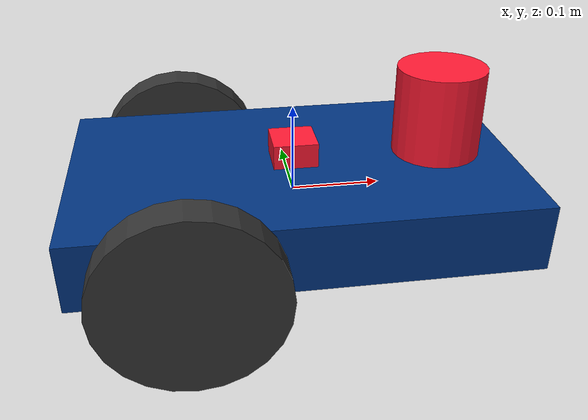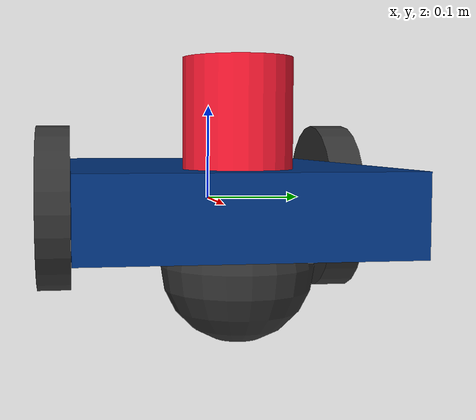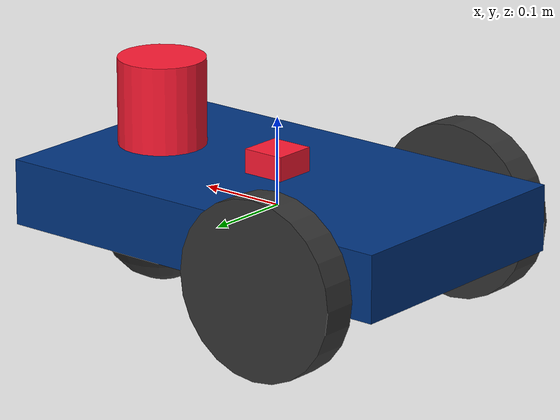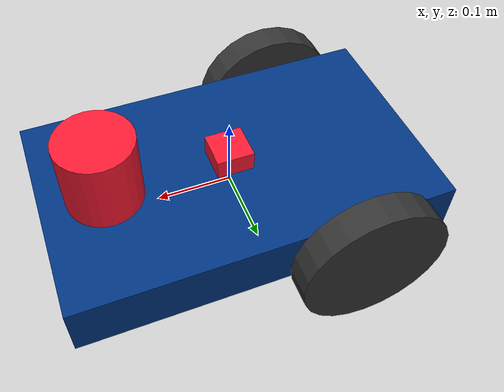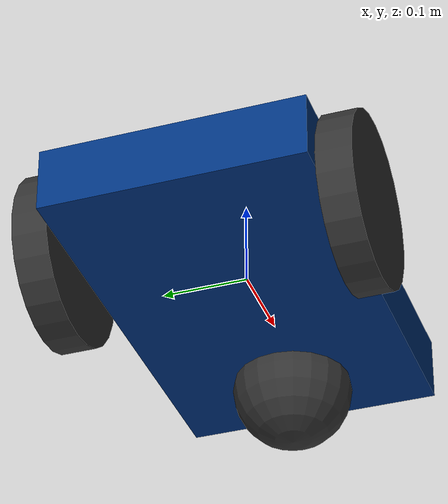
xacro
<?xml version="1.0"?>
<robot name="simple_bot" xmlns:xacro="http://ros.org/wiki/xacro">

    <xacro:include filename="$(find simplebot_description)/urdf/material.xacro"/>
    <xacro:include filename="$(find simplebot_description)/urdf/gazebo.xacro"/>

    <xacro:property name="wheel_radius" value="0.1" />
    <xacro:property name="wheel_width" value="0.04" />
    <xacro:property name="castor_radius" value="0.07" />

    <xacro:property name="box_width" value="0.3" />
    <xacro:property name="box_length" value="0.5" />
    <xacro:property name="box_height" value="0.075" />

    <xacro:property name="z_off" value="0.12" />

    <xacro:property name="lidar_height" value="0.1" />
    <xacro:property name="imu_side" value="0.05" />

    <link name="base_footprint"/>

    <link name="base_link">
        <visual>
            <geometry>
                <box size="${box_length} ${box_width} ${box_height}"/>
            </geometry>
            <material name="blue"/>
        </visual>
        <collision>
            <geometry>
                <box size="${box_length} ${box_width} ${box_height}"/>
            </geometry>
        </collision>
        <inertial>
            <mass value="1.0"/>
            <inertia ixx="0.001" ixy="0.0" ixz="0.0" iyy="0.001" iyz="0.0" izz="0.001"/>
        </inertial>

    </link>

    <joint name="base_joint" type="fixed">
        <origin xyz="0.0 0.0 ${z_off}" rpy="0.0 0.0 0.0"/>
        <parent link="base_link"/>
        <child link="base_footprint"/>
    </joint>

    <xacro:macro name="wheel_def" params="wheel_name direction">
        <link name="${wheel_name}_link">
            <visual>
                <origin xyz="0.0 0.0 0.0" rpy="${pi/2} 0.0 0.0"/>
                <geometry>
                    <cylinder radius="${wheel_radius}" length="${wheel_width}"/>
                </geometry>
                <material name="gray"/>
            </visual>
            <collision>
                <origin xyz="0.0 0.0 0.0" rpy="${pi/2} 0.0 0.0"/>
                <geometry>
                    <cylinder radius="${wheel_radius}" length="${wheel_width}"/>
                </geometry>
            </collision>
            <inertial>
                <mass value="0.5"/>
                <inertia ixx="0.0001" iyy="0.0001" izz="0.0001" ixy="0.0" ixz="0.0" iyz="0.0"/>
            </inertial>
        </link>

        <joint name="${wheel_name}_joint" type="continuous">
            <origin xyz="-${box_length/4} ${direction * (box_width/2 + wheel_width/2)} -${(z_off - wheel_radius)}" rpy="0.0 0.0 0.0"/>
            <parent link="base_link"/>
            <child link="${wheel_name}_link"/>
            <axis xyz="0.0 1.0 0.0"/>
        </joint>
    </xacro:macro>

    <xacro:wheel_def wheel_name="right_wheel" direction="-1"/>
    <xacro:wheel_def wheel_name="left_wheel" direction="1"/>

    <link name="castor_wheel">
        <visual>
            <geometry>
                <sphere radius="${castor_radius}"/>
            </geometry>
            <material name="gray"/>
        </visual>
        <collision>
            <geometry>
                <sphere radius="${castor_radius}"/>
            </geometry>
        </collision>
        <inertial>
            <mass value="0.01"/>
            <inertia ixx="0.001" ixy="0.0" ixz="0.0" iyy="0.001" iyz="0.0" izz="0.001"/>
        </inertial>
    </link>

    <joint name="caster_joint" type="fixed">
        <origin xyz="${box_length/3} 0.0 -${z_off - castor_radius}" rpy="0.0 0.0 0.0"/>
        <parent link="base_link"/>
        <child link="castor_wheel"/>
    </joint>

    <link name="lidar_link">
        <visual>
            <origin xyz="0.0 0.0 0.0" rpy="0.0 0.0 0.0"/>
            <geometry>
                <cylinder radius="0.05" length="${lidar_height}"/>
            </geometry>
            <material name="red"/>
        </visual>
        <collision>
            <origin xyz="0.0 0.0 0.0" rpy="0.0 0.0 0.0"/>
            <geometry>
                <cylinder radius="0.05" length="${lidar_height}"/>
            </geometry>
        </collision>
        <inertial>
            <mass value="0.001"/>
            <inertia ixx="0.001" ixy="0.0" ixz="0.0" iyy="0.001" iyz="0.0" izz="0.001"/>
        </inertial>
    </link>

    <joint name="lidar_joint" type="fixed">
        <origin xyz="${box_length/3} 0.0 ${(lidar_height/2 + box_height/2)}" rpy="0.0 0.0 0.0"/>
        <parent link="base_link"/>
        <child link="lidar_link"/>
    </joint>

    <link name="imu_link">
        <visual>
            <geometry>
                <box size="${imu_side} ${imu_side} ${imu_side}"/>
            </geometry>
            <material name="red"/>
        </visual>
        <collision>
            <geometry>
                <box size="${imu_side} ${imu_side} ${imu_side}"/>
            </geometry>
        </collision>
        <inertial>
            <mass value="0.0005"/>
            <inertia ixx="0.001" ixy="0.0" ixz="0.0" iyy="0.001" iyz="0.0" izz="0.001"/>
        </inertial>
    </link>

    <joint name="imu_joint" type="fixed">
        <origin xyz="0.0 0.0 0.04" rpy="0.0 0.0 0.0"/>
        <parent link="base_link"/>
        <child link="imu_link"/>
    </joint>

</robot>

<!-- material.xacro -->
<robot xmlns:xacro="http://www.ros.org/wiki/xacro">
    <material name="white">
        <color rgba="1.0 1.0 1.0 1.0"/>
    </material>

    <material name="red">
        <color rgba="1.0 0.1 0.2 1.0"/>
    </material>

    <material name="blue">
        <color rgba="0.0 0.2 0.5 1.0"/>
    </material>

    <material name="gray">
        <color rgba="0.2 0.2 0.2 1.0"/>
    </material>
</robot>
